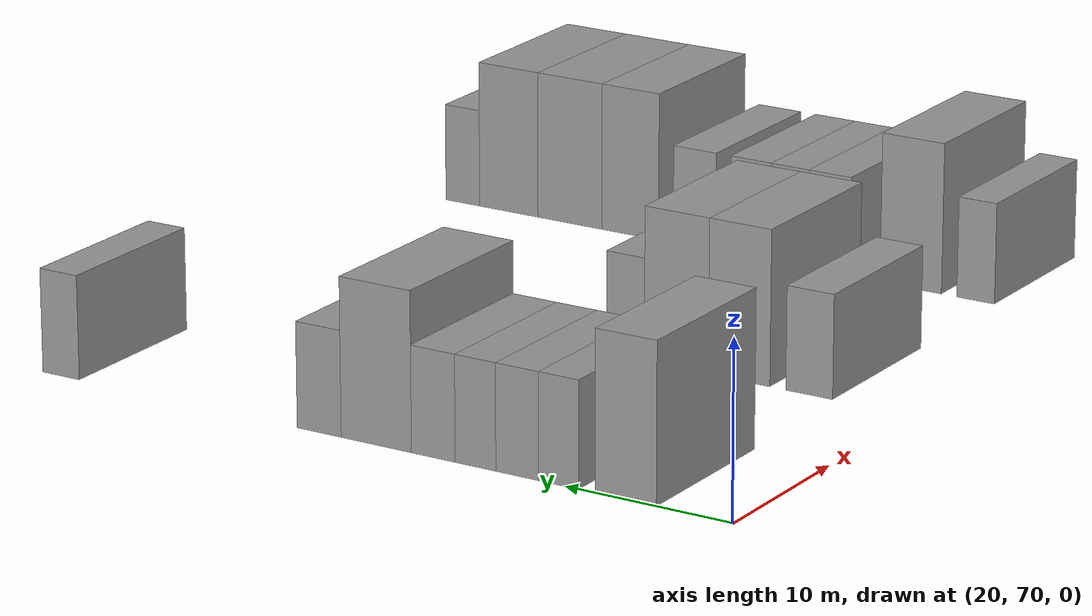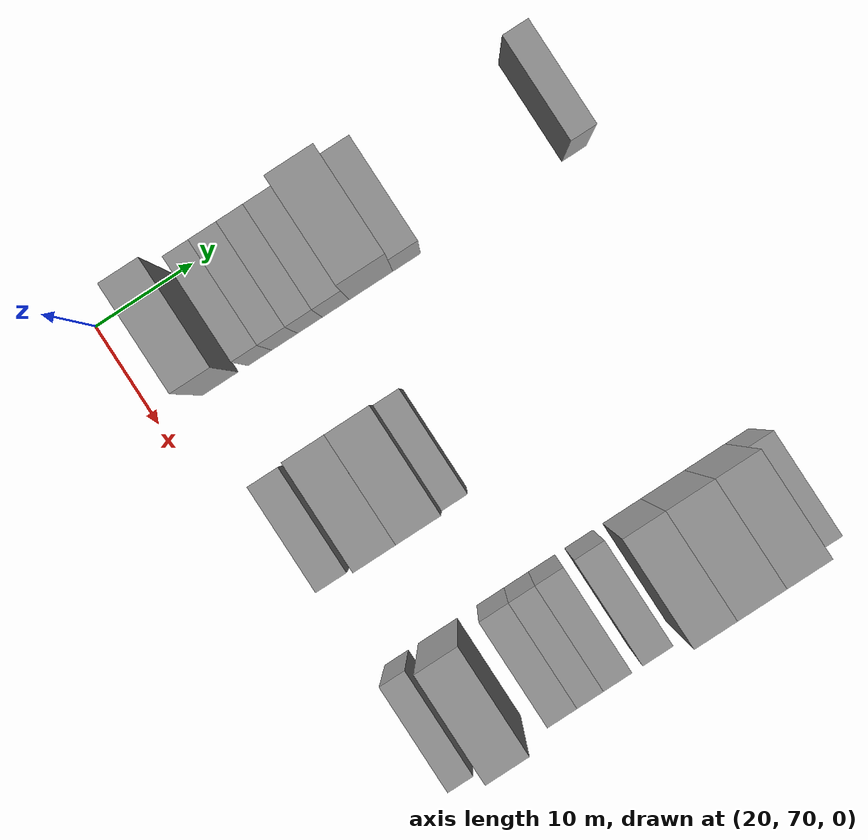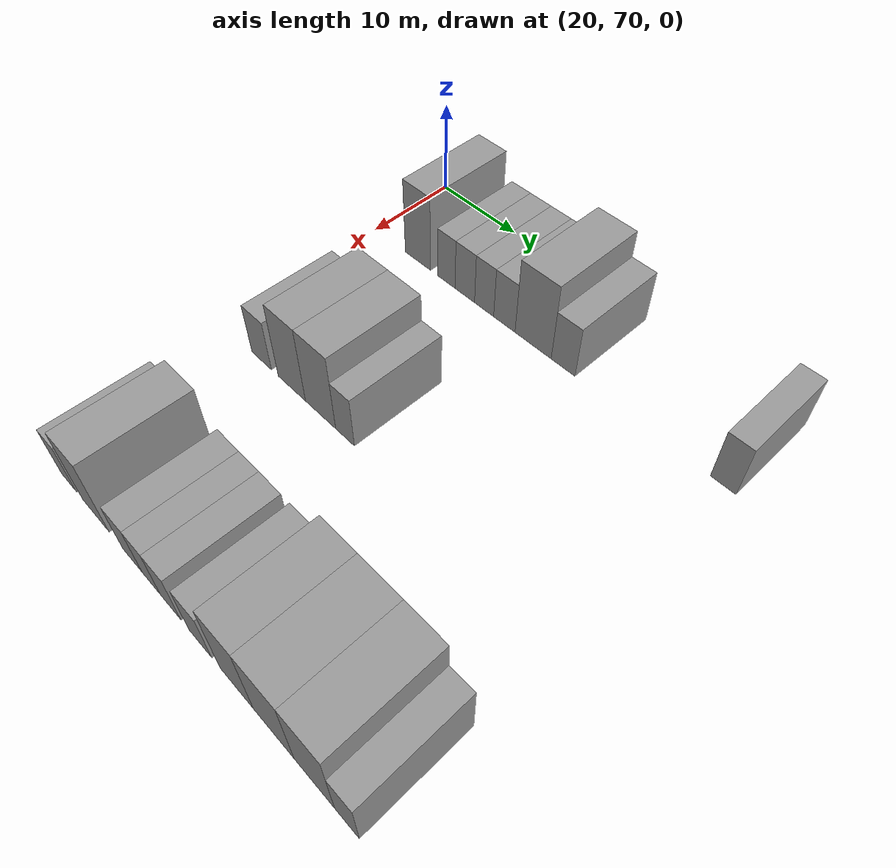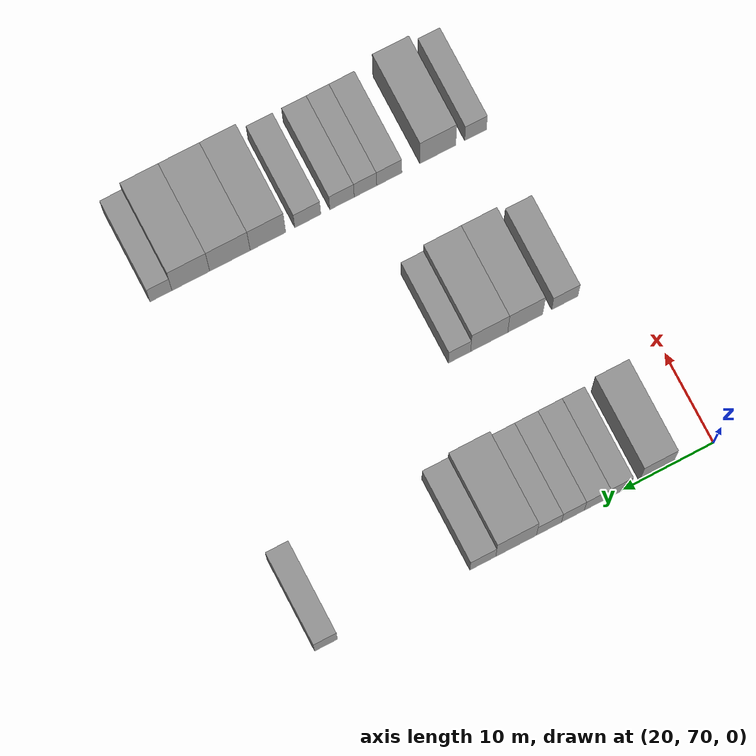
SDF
<sdf version="1.6">
 <world name="default">
  <model name="building_83">
   <static>1</static>
   <pose>25.0000 76.3684 0 0.000000 0.000000 0.000000</pose>
   <link name="link">
    <pose>0 0 4.50 0 0 0</pose>
    <collision name="collision"><geometry><box><size>10.0000 3.6831 9.0000</size></box></geometry></collision>
    <visual name="visual">
     <cast_shadows>0</cast_shadows>
     <geometry><box><size>10.0000 3.6831 9.0000</size></box></geometry>
     <material>
      <script>
       <uri>model://grey_wall/materials/scripts</uri>
       <uri>model://grey_wall/materials/textures</uri>
       <name>vrc/grey_wall</name>
      </script>
     </material>
    </visual>
   </link>
  </model>
  <model name="building_84">
   <static>1</static>
   <pose>25.0000 80.4334 0 0.000000 0.000000 0.000000</pose>
   <link name="link">
    <pose>0 0 3.00 0 0 0</pose>
    <collision name="collision"><geometry><box><size>10.0000 2.4469 6.0000</size></box></geometry></collision>
    <visual name="visual">
     <cast_shadows>0</cast_shadows>
     <geometry><box><size>10.0000 2.4469 6.0000</size></box></geometry>
     <material>
      <script>
       <uri>model://grey_wall/materials/scripts</uri>
       <uri>model://grey_wall/materials/textures</uri>
       <name>vrc/grey_wall</name>
      </script>
     </material>
    </visual>
   </link>
  </model>
  <model name="building_85">
   <static>1</static>
   <pose>25.0000 82.9787 0 0.000000 0.000000 0.000000</pose>
   <link name="link">
    <pose>0 0 3.00 0 0 0</pose>
    <collision name="collision"><geometry><box><size>10.0000 2.6435 6.0000</size></box></geometry></collision>
    <visual name="visual">
     <cast_shadows>0</cast_shadows>
     <geometry><box><size>10.0000 2.6435 6.0000</size></box></geometry>
     <material>
      <script>
       <uri>model://grey_wall/materials/scripts</uri>
       <uri>model://grey_wall/materials/textures</uri>
       <name>vrc/grey_wall</name>
      </script>
     </material>
    </visual>
   </link>
  </model>
  <model name="building_86">
   <static>1</static>
   <pose>25.0000 85.5653 0 0.000000 0.000000 0.000000</pose>
   <link name="link">
    <pose>0 0 3.00 0 0 0</pose>
    <collision name="collision"><geometry><box><size>10.0000 2.5298 6.0000</size></box></geometry></collision>
    <visual name="visual">
     <cast_shadows>0</cast_shadows>
     <geometry><box><size>10.0000 2.5298 6.0000</size></box></geometry>
     <material>
      <script>
       <uri>model://grey_wall/materials/scripts</uri>
       <uri>model://grey_wall/materials/textures</uri>
       <name>vrc/grey_wall</name>
      </script>
     </material>
    </visual>
   </link>
  </model>
  <model name="building_87">
   <static>1</static>
   <pose>25.0000 88.2062 0 0.000000 0.000000 0.000000</pose>
   <link name="link">
    <pose>0 0 3.00 0 0 0</pose>
    <collision name="collision"><geometry><box><size>10.0000 2.7520 6.0000</size></box></geometry></collision>
    <visual name="visual">
     <cast_shadows>0</cast_shadows>
     <geometry><box><size>10.0000 2.7520 6.0000</size></box></geometry>
     <material>
      <script>
       <uri>model://grey_wall/materials/scripts</uri>
       <uri>model://grey_wall/materials/textures</uri>
       <name>vrc/grey_wall</name>
      </script>
     </material>
    </visual>
   </link>
  </model>
  <model name="building_88">
   <static>1</static>
   <pose>25.0000 91.8163 0 0.000000 0.000000 0.000000</pose>
   <link name="link">
    <pose>0 0 4.50 0 0 0</pose>
    <collision name="collision"><geometry><box><size>10.0000 4.4682 9.0000</size></box></geometry></collision>
    <visual name="visual">
     <cast_shadows>0</cast_shadows>
     <geometry><box><size>10.0000 4.4682 9.0000</size></box></geometry>
     <material>
      <script>
       <uri>model://grey_wall/materials/scripts</uri>
       <uri>model://grey_wall/materials/textures</uri>
       <name>vrc/grey_wall</name>
      </script>
     </material>
    </visual>
   </link>
  </model>
  <model name="building_89">
   <static>1</static>
   <pose>25.0000 95.4685 0 0.000000 0.000000 0.000000</pose>
   <link name="link">
    <pose>0 0 3.00 0 0 0</pose>
    <collision name="collision"><geometry><box><size>10.0000 2.8363 6.0000</size></box></geometry></collision>
    <visual name="visual">
     <cast_shadows>0</cast_shadows>
     <geometry><box><size>10.0000 2.8363 6.0000</size></box></geometry>
     <material>
      <script>
       <uri>model://grey_wall/materials/scripts</uri>
       <uri>model://grey_wall/materials/textures</uri>
       <name>vrc/grey_wall</name>
      </script>
     </material>
    </visual>
   </link>
  </model>
  <model name="building_90">
   <static>1</static>
   <pose>25.0000 112.6101 0 0.000000 0.000000 0.000000</pose>
   <link name="link">
    <pose>0 0 3.00 0 0 0</pose>
    <collision name="collision"><geometry><box><size>10.0000 2.4823 6.0000</size></box></geometry></collision>
    <visual name="visual">
     <cast_shadows>0</cast_shadows>
     <geometry><box><size>10.0000 2.4823 6.0000</size></box></geometry>
     <material>
      <script>
       <uri>model://grey_wall/materials/scripts</uri>
       <uri>model://grey_wall/materials/textures</uri>
       <name>vrc/grey_wall</name>
      </script>
     </material>
    </visual>
   </link>
  </model>
  <model name="building_195">
   <static>1</static>
   <pose>44.0000 76.3291 0 0.000000 0.000000 0.000000</pose>
   <link name="link">
    <pose>0 0 3.00 0 0 0</pose>
    <collision name="collision"><geometry><box><size>10.0000 2.9200 6.0000</size></box></geometry></collision>
    <visual name="visual">
     <cast_shadows>0</cast_shadows>
     <geometry><box><size>10.0000 2.9200 6.0000</size></box></geometry>
     <material>
      <script>
       <uri>model://grey_wall/materials/scripts</uri>
       <uri>model://grey_wall/materials/textures</uri>
       <name>vrc/grey_wall</name>
      </script>
     </material>
    </visual>
   </link>
  </model>
  <model name="building_196">
   <static>1</static>
   <pose>44.0000 80.7308 0 0.000000 0.000000 0.000000</pose>
   <link name="link">
    <pose>0 0 4.50 0 0 0</pose>
    <collision name="collision"><geometry><box><size>10.0000 3.8834 9.0000</size></box></geometry></collision>
    <visual name="visual">
     <cast_shadows>0</cast_shadows>
     <geometry><box><size>10.0000 3.8834 9.0000</size></box></geometry>
     <material>
      <script>
       <uri>model://grey_wall/materials/scripts</uri>
       <uri>model://grey_wall/materials/textures</uri>
       <name>vrc/grey_wall</name>
      </script>
     </material>
    </visual>
   </link>
  </model>
  <model name="building_197">
   <static>1</static>
   <pose>44.0000 84.7281 0 0.000000 0.000000 0.000000</pose>
   <link name="link">
    <pose>0 0 4.50 0 0 0</pose>
    <collision name="collision"><geometry><box><size>10.0000 4.1111 9.0000</size></box></geometry></collision>
    <visual name="visual">
     <cast_shadows>0</cast_shadows>
     <geometry><box><size>10.0000 4.1111 9.0000</size></box></geometry>
     <material>
      <script>
       <uri>model://grey_wall/materials/scripts</uri>
       <uri>model://grey_wall/materials/textures</uri>
       <name>vrc/grey_wall</name>
      </script>
     </material>
    </visual>
   </link>
  </model>
  <model name="building_198">
   <static>1</static>
   <pose>44.0000 88.0117 0 0.000000 0.000000 0.000000</pose>
   <link name="link">
    <pose>0 0 3.00 0 0 0</pose>
    <collision name="collision"><geometry><box><size>10.0000 2.4561 6.0000</size></box></geometry></collision>
    <visual name="visual">
     <cast_shadows>0</cast_shadows>
     <geometry><box><size>10.0000 2.4561 6.0000</size></box></geometry>
     <material>
      <script>
       <uri>model://grey_wall/materials/scripts</uri>
       <uri>model://grey_wall/materials/textures</uri>
       <name>vrc/grey_wall</name>
      </script>
     </material>
    </visual>
   </link>
  </model>
  <model name="building_309">
   <static>1</static>
   <pose>63.0000 76.2073 0 0.000000 0.000000 0.000000</pose>
   <link name="link">
    <pose>0 0 3.00 0 0 0</pose>
    <collision name="collision"><geometry><box><size>10.0000 2.4243 6.0000</size></box></geometry></collision>
    <visual name="visual">
     <cast_shadows>0</cast_shadows>
     <geometry><box><size>10.0000 2.4243 6.0000</size></box></geometry>
     <material>
      <script>
       <uri>model://grey_wall/materials/scripts</uri>
       <uri>model://grey_wall/materials/textures</uri>
       <name>vrc/grey_wall</name>
      </script>
     </material>
    </visual>
   </link>
  </model>
  <model name="building_310">
   <static>1</static>
   <pose>63.0000 80.4223 0 0.000000 0.000000 0.000000</pose>
   <link name="link">
    <pose>0 0 4.50 0 0 0</pose>
    <collision name="collision"><geometry><box><size>10.0000 4.0057 9.0000</size></box></geometry></collision>
    <visual name="visual">
     <cast_shadows>0</cast_shadows>
     <geometry><box><size>10.0000 4.0057 9.0000</size></box></geometry>
     <material>
      <script>
       <uri>model://grey_wall/materials/scripts</uri>
       <uri>model://grey_wall/materials/textures</uri>
       <name>vrc/grey_wall</name>
      </script>
     </material>
    </visual>
   </link>
  </model>
  <model name="building_311">
   <static>1</static>
   <pose>63.0000 85.8263 0 0.000000 0.000000 0.000000</pose>
   <link name="link">
    <pose>0 0 3.00 0 0 0</pose>
    <collision name="collision"><geometry><box><size>10.0000 2.8021 6.0000</size></box></geometry></collision>
    <visual name="visual">
     <cast_shadows>0</cast_shadows>
     <geometry><box><size>10.0000 2.8021 6.0000</size></box></geometry>
     <material>
      <script>
       <uri>model://grey_wall/materials/scripts</uri>
       <uri>model://grey_wall/materials/textures</uri>
       <name>vrc/grey_wall</name>
      </script>
     </material>
    </visual>
   </link>
  </model>
  <model name="building_312">
   <static>1</static>
   <pose>63.0000 88.4804 0 0.000000 0.000000 0.000000</pose>
   <link name="link">
    <pose>0 0 3.00 0 0 0</pose>
    <collision name="collision"><geometry><box><size>10.0000 2.5061 6.0000</size></box></geometry></collision>
    <visual name="visual">
     <cast_shadows>0</cast_shadows>
     <geometry><box><size>10.0000 2.5061 6.0000</size></box></geometry>
     <material>
      <script>
       <uri>model://grey_wall/materials/scripts</uri>
       <uri>model://grey_wall/materials/textures</uri>
       <name>vrc/grey_wall</name>
      </script>
     </material>
    </visual>
   </link>
  </model>
  <model name="building_313">
   <static>1</static>
   <pose>63.0000 91.0857 0 0.000000 0.000000 0.000000</pose>
   <link name="link">
    <pose>0 0 3.00 0 0 0</pose>
    <collision name="collision"><geometry><box><size>10.0000 2.7044 6.0000</size></box></geometry></collision>
    <visual name="visual">
     <cast_shadows>0</cast_shadows>
     <geometry><box><size>10.0000 2.7044 6.0000</size></box></geometry>
     <material>
      <script>
       <uri>model://grey_wall/materials/scripts</uri>
       <uri>model://grey_wall/materials/textures</uri>
       <name>vrc/grey_wall</name>
      </script>
     </material>
    </visual>
   </link>
  </model>
  <model name="building_314">
   <static>1</static>
   <pose>63.0000 94.8861 0 0.000000 0.000000 0.000000</pose>
   <link name="link">
    <pose>0 0 3.00 0 0 0</pose>
    <collision name="collision"><geometry><box><size>10.0000 2.8964 6.0000</size></box></geometry></collision>
    <visual name="visual">
     <cast_shadows>0</cast_shadows>
     <geometry><box><size>10.0000 2.8964 6.0000</size></box></geometry>
     <material>
      <script>
       <uri>model://grey_wall/materials/scripts</uri>
       <uri>model://grey_wall/materials/textures</uri>
       <name>vrc/grey_wall</name>
      </script>
     </material>
    </visual>
   </link>
  </model>
  <model name="building_315">
   <static>1</static>
   <pose>63.0000 99.3007 0 0.000000 0.000000 0.000000</pose>
   <link name="link">
    <pose>0 0 4.50 0 0 0</pose>
    <collision name="collision"><geometry><box><size>10.0000 3.9327 9.0000</size></box></geometry></collision>
    <visual name="visual">
     <cast_shadows>0</cast_shadows>
     <geometry><box><size>10.0000 3.9327 9.0000</size></box></geometry>
     <material>
      <script>
       <uri>model://grey_wall/materials/scripts</uri>
       <uri>model://grey_wall/materials/textures</uri>
       <name>vrc/grey_wall</name>
      </script>
     </material>
    </visual>
   </link>
  </model>
  <model name="building_316">
   <static>1</static>
   <pose>63.0000 103.5090 0 0.000000 0.000000 0.000000</pose>
   <link name="link">
    <pose>0 0 4.50 0 0 0</pose>
    <collision name="collision"><geometry><box><size>10.0000 4.4839 9.0000</size></box></geometry></collision>
    <visual name="visual">
     <cast_shadows>0</cast_shadows>
     <geometry><box><size>10.0000 4.4839 9.0000</size></box></geometry>
     <material>
      <script>
       <uri>model://grey_wall/materials/scripts</uri>
       <uri>model://grey_wall/materials/textures</uri>
       <name>vrc/grey_wall</name>
      </script>
     </material>
    </visual>
   </link>
  </model>
  <model name="building_317">
   <static>1</static>
   <pose>63.0000 107.8317 0 0.000000 0.000000 0.000000</pose>
   <link name="link">
    <pose>0 0 4.50 0 0 0</pose>
    <collision name="collision"><geometry><box><size>10.0000 4.1615 9.0000</size></box></geometry></collision>
    <visual name="visual">
     <cast_shadows>0</cast_shadows>
     <geometry><box><size>10.0000 4.1615 9.0000</size></box></geometry>
     <material>
      <script>
       <uri>model://grey_wall/materials/scripts</uri>
       <uri>model://grey_wall/materials/textures</uri>
       <name>vrc/grey_wall</name>
      </script>
     </material>
    </visual>
   </link>
  </model>
  <model name="building_318">
   <static>1</static>
   <pose>63.0000 111.1244 0 0.000000 0.000000 0.000000</pose>
   <link name="link">
    <pose>0 0 3.00 0 0 0</pose>
    <collision name="collision"><geometry><box><size>10.0000 2.4241 6.0000</size></box></geometry></collision>
    <visual name="visual">
     <cast_shadows>0</cast_shadows>
     <geometry><box><size>10.0000 2.4241 6.0000</size></box></geometry>
     <material>
      <script>
       <uri>model://grey_wall/materials/scripts</uri>
       <uri>model://grey_wall/materials/textures</uri>
       <name>vrc/grey_wall</name>
      </script>
     </material>
    </visual>
   </link>
  </model>
 </world>
</sdf>
